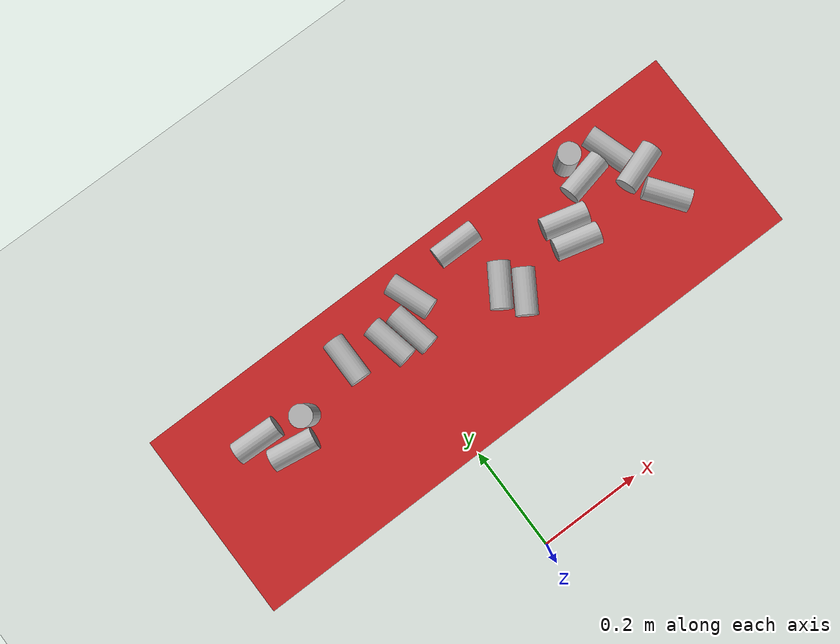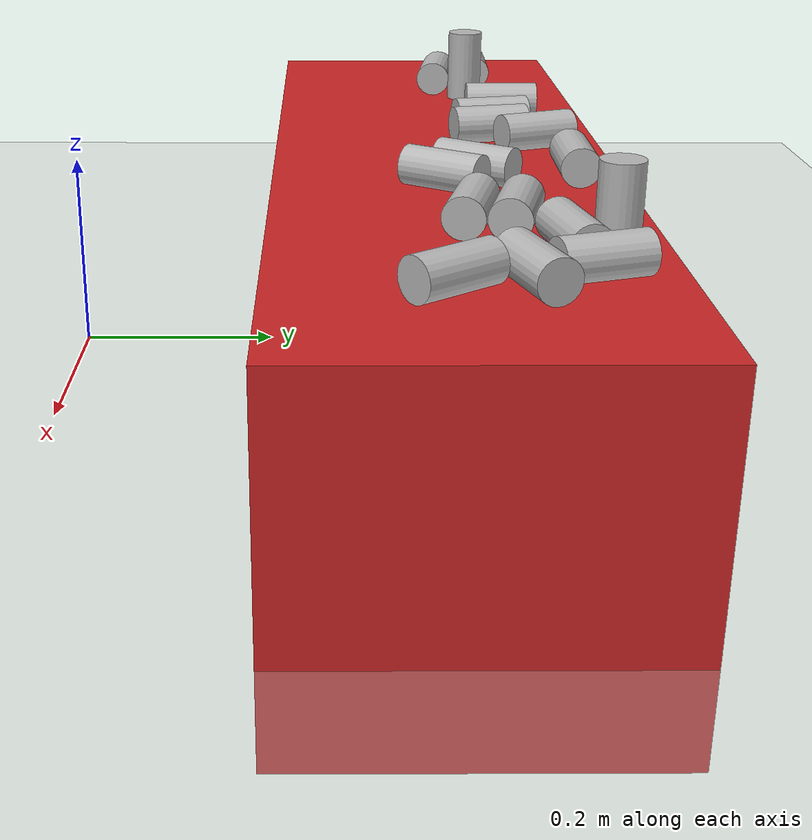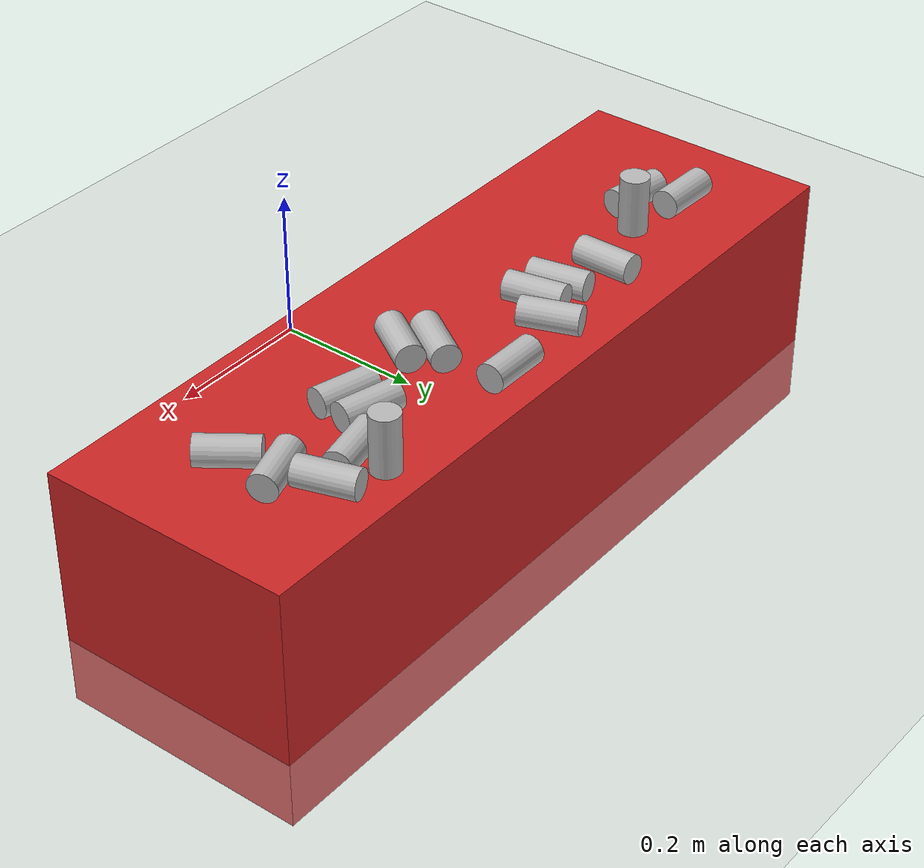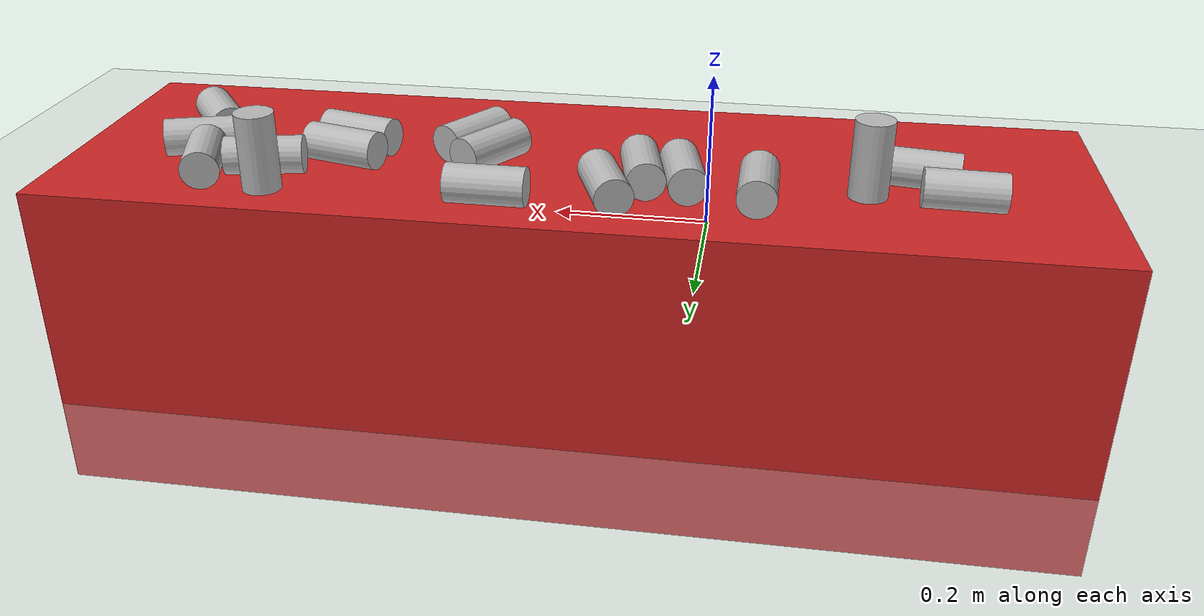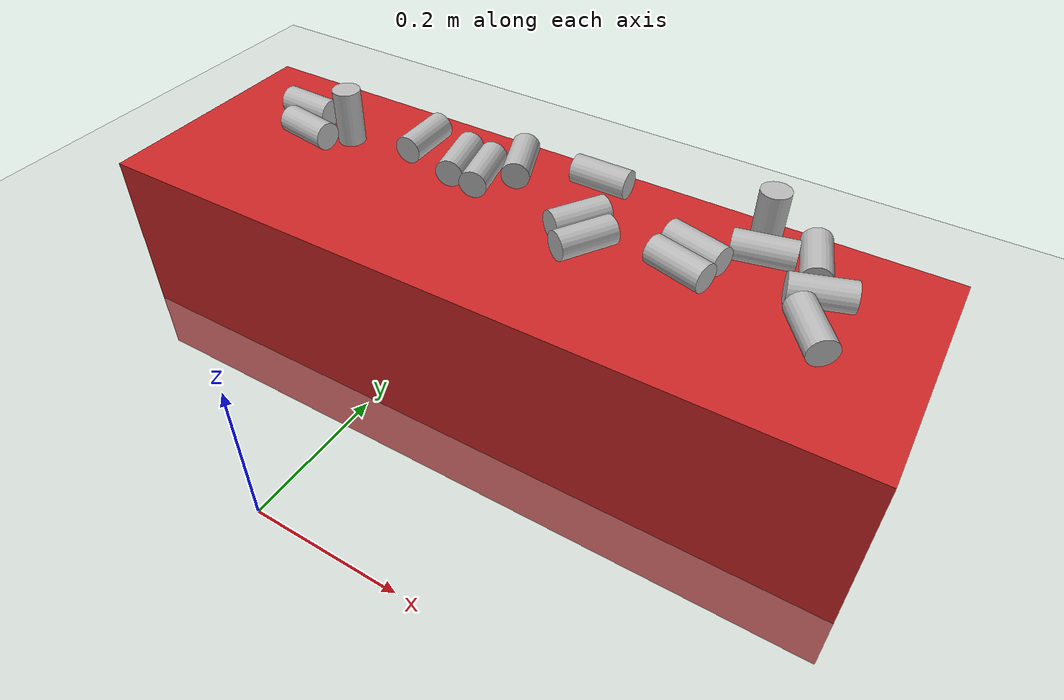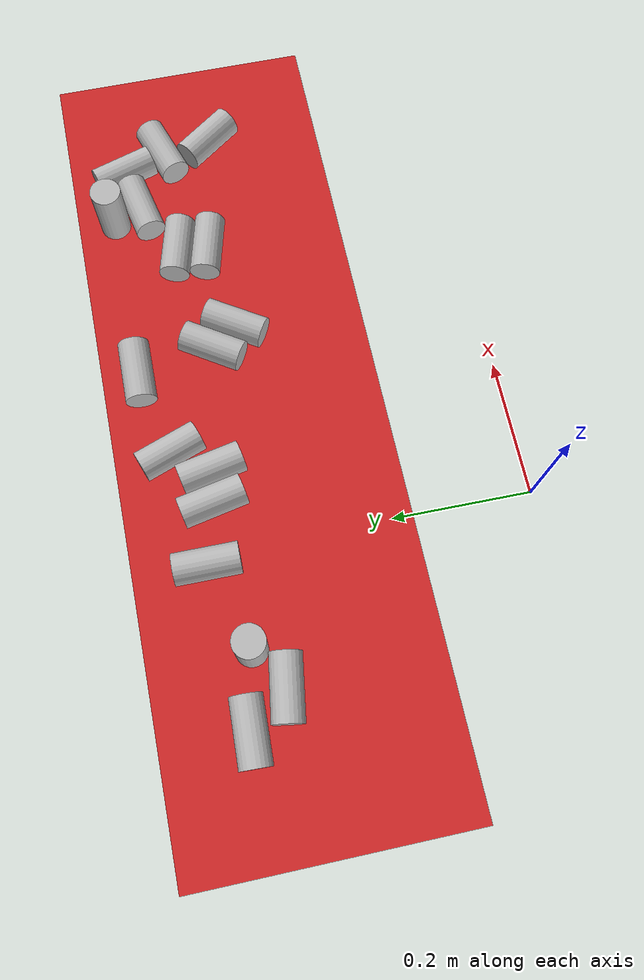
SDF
<sdf version="1.7">
 <world name="default">
  <model name="ground_plane">
   <static>1</static>
   <link name="link">
    <collision name="collision">
     <geometry><plane><normal>0 0 1</normal><size>100 100</size></plane></geometry>
     <surface>
      <contact><collide_bitmask>65535</collide_bitmask></contact>
      <friction><ode><mu>100</mu><mu2>50</mu2></ode></friction>
     </surface>
    </collision>
    <visual name="visual">
     <cast_shadows>0</cast_shadows>
     <geometry><plane><normal>0 0 1</normal><size>100 100</size></plane></geometry>
     <material>
      <script><uri>file://media/materials/scripts/gazebo.material</uri><name>Gazebo/Grey</name></script>
     </material>
    </visual>
   </link>
  </model>
  <model name="robot_station_clone">
   <static>1</static>
   <link name="link">
    <inertial>
     <mass>100</mass>
     <inertia>
      <ixx>0.166667</ixx>
      <ixy>0</ixy>
      <ixz>0</ixz>
      <iyy>0.166667</iyy>
      <iyz>0</iyz>
      <izz>0.166667</izz>
     </inertia>
    </inertial>
    <visual name="visual">
     <geometry><box><size>1.00072 0.323595 0.318232</size></box></geometry>
     <material>
      <script><name>Gazebo/Red</name><uri>file://media/materials/scripts/gazebo.material</uri></script>
      <shader type="pixel"/>
     </material>
    </visual>
    <collision name="collision">
     <geometry><box><size>1.00072 0.323595 0.318232</size></box></geometry>
     <surface>
      <friction>
       <ode><mu>1</mu><mu2>1</mu2><fdir1>0 0 0</fdir1><slip1>0</slip1><slip2>0</slip2></ode>
       <torsional>
        <coefficient>1</coefficient>
        <patch_radius>0</patch_radius>
        <surface_radius>0</surface_radius>
        <use_patch_radius>1</use_patch_radius>
        <ode><slip>0</slip></ode>
       </torsional>
      </friction>
      <bounce><restitution_coefficient>0</restitution_coefficient><threshold>1e+06</threshold></bounce>
      <contact>
       <collide_without_contact>0</collide_without_contact>
       <collide_without_contact_bitmask>1</collide_without_contact_bitmask>
       <collide_bitmask>1</collide_bitmask>
       <ode>
        <soft_cfm>0</soft_cfm>
        <soft_erp>0.2</soft_erp>
        <kp>1e+13</kp>
        <kd>1</kd>
        <max_vel>0.01</max_vel>
        <min_depth>0</min_depth>
       </ode>
       <bullet>
        <split_impulse>1</split_impulse>
        <split_impulse_penetration_threshold>-0.01</split_impulse_penetration_threshold>
        <soft_cfm>0</soft_cfm>
        <soft_erp>0.2</soft_erp>
        <kp>1e+13</kp>
        <kd>1</kd>
       </bullet>
      </contact>
     </surface>
    </collision>
   </link>
   <pose>0.108828 0.374252 0.07048 -1e-06 0.000369 0.008285</pose>
  </model>
  <model name="obj_s_4">
   <link name="link_0">
    <inertial>
     <mass>0.00147636</mass>
     <inertia>
      <ixx>4.89601e-06</ixx>
      <ixy>0</ixy>
      <ixz>0</ixz>
      <iyy>4.89601e-06</iyy>
      <iyz>0</iyz>
      <izz>1.48331e-06</izz>
     </inertia>
    </inertial>
    <visual name="visual">
     <geometry><cylinder><radius>0.018402</radius><length>0.074444</length></cylinder></geometry>
     <material>
      <lighting>1</lighting>
      <script>
       <uri>model://sprite/materials/scripts</uri>
       <uri>model://sprite/materials/textures</uri>
       <name>sprite</name>
      </script>
      <shader type="pixel"/>
     </material>
    </visual>
    <collision name="collision">
     <geometry><cylinder><radius>0.018402</radius><length>0.074444</length></cylinder></geometry>
     <surface>
      <friction>
       <ode><mu>1</mu><mu2>1</mu2><fdir1>0 0 0</fdir1><slip1>0</slip1><slip2>0</slip2></ode>
       <torsional>
        <coefficient>1</coefficient>
        <patch_radius>0</patch_radius>
        <surface_radius>0</surface_radius>
        <use_patch_radius>1</use_patch_radius>
        <ode><slip>0</slip></ode>
       </torsional>
      </friction>
      <bounce><restitution_coefficient>0</restitution_coefficient><threshold>1e+06</threshold></bounce>
      <contact>
       <collide_without_contact>0</collide_without_contact>
       <collide_without_contact_bitmask>1</collide_without_contact_bitmask>
       <collide_bitmask>1</collide_bitmask>
       <ode>
        <soft_cfm>0</soft_cfm>
        <soft_erp>0.2</soft_erp>
        <kp>1e+13</kp>
        <kd>1</kd>
        <max_vel>0.01</max_vel>
        <min_depth>0</min_depth>
       </ode>
       <bullet>
        <split_impulse>1</split_impulse>
        <split_impulse_penetration_threshold>-0.01</split_impulse_penetration_threshold>
        <soft_cfm>0</soft_cfm>
        <soft_erp>0.2</soft_erp>
        <kp>1e+13</kp>
        <kd>1</kd>
       </bullet>
      </contact>
     </surface>
    </collision>
   </link>
   <static>0</static>
   <pose>-0.069769 0.448923 0.249056 -1.5708 -0.578227 0.000529</pose>
  </model>
  <model name="obj_s_0">
   <link name="link_0">
    <inertial>
     <mass>0.00147636</mass>
     <inertia>
      <ixx>4.89601e-06</ixx>
      <ixy>0</ixy>
      <ixz>0</ixz>
      <iyy>4.89601e-06</iyy>
      <iyz>0</iyz>
      <izz>1.48331e-06</izz>
     </inertia>
    </inertial>
    <visual name="visual">
     <geometry><cylinder><radius>0.018402</radius><length>0.074444</length></cylinder></geometry>
     <material>
      <lighting>1</lighting>
      <script>
       <uri>model://sprite/materials/scripts</uri>
       <uri>model://sprite/materials/textures</uri>
       <name>sprite</name>
      </script>
      <shader type="pixel"/>
     </material>
    </visual>
    <collision name="collision">
     <geometry><cylinder><radius>0.018402</radius><length>0.074444</length></cylinder></geometry>
     <surface>
      <friction>
       <ode><mu>1</mu><mu2>1</mu2><fdir1>0 0 0</fdir1><slip1>0</slip1><slip2>0</slip2></ode>
       <torsional>
        <coefficient>1</coefficient>
        <patch_radius>0</patch_radius>
        <surface_radius>0</surface_radius>
        <use_patch_radius>1</use_patch_radius>
        <ode><slip>0</slip></ode>
       </torsional>
      </friction>
      <bounce><restitution_coefficient>0</restitution_coefficient><threshold>1e+06</threshold></bounce>
      <contact>
       <collide_without_contact>0</collide_without_contact>
       <collide_without_contact_bitmask>1</collide_without_contact_bitmask>
       <collide_bitmask>1</collide_bitmask>
       <ode>
        <soft_cfm>0</soft_cfm>
        <soft_erp>0.2</soft_erp>
        <kp>1e+13</kp>
        <kd>1</kd>
        <max_vel>0.01</max_vel>
        <min_depth>0</min_depth>
       </ode>
       <bullet>
        <split_impulse>1</split_impulse>
        <split_impulse_penetration_threshold>-0.01</split_impulse_penetration_threshold>
        <soft_cfm>0</soft_cfm>
        <soft_erp>0.2</soft_erp>
        <kp>1e+13</kp>
        <kd>1</kd>
       </bullet>
      </contact>
     </surface>
    </collision>
   </link>
   <static>0</static>
   <pose>-0.169124 0.41751 0.267872 0.000107 -0.000268 0.156933</pose>
  </model>
  <model name="obj_s_6">
   <link name="link_0">
    <inertial>
     <mass>0.00147636</mass>
     <inertia>
      <ixx>4.89601e-06</ixx>
      <ixy>0</ixy>
      <ixz>0</ixz>
      <iyy>4.89601e-06</iyy>
      <iyz>0</iyz>
      <izz>1.48331e-06</izz>
     </inertia>
    </inertial>
    <visual name="visual">
     <geometry><cylinder><radius>0.018402</radius><length>0.074444</length></cylinder></geometry>
     <material>
      <lighting>1</lighting>
      <script>
       <uri>model://sprite/materials/scripts</uri>
       <uri>model://sprite/materials/textures</uri>
       <name>sprite</name>
      </script>
      <shader type="pixel"/>
     </material>
    </visual>
    <collision name="collision">
     <geometry><cylinder><radius>0.018402</radius><length>0.074444</length></cylinder></geometry>
     <surface>
      <friction>
       <ode><mu>1</mu><mu2>1</mu2><fdir1>0 0 0</fdir1><slip1>0</slip1><slip2>0</slip2></ode>
       <torsional>
        <coefficient>1</coefficient>
        <patch_radius>0</patch_radius>
        <surface_radius>0</surface_radius>
        <use_patch_radius>1</use_patch_radius>
        <ode><slip>0</slip></ode>
       </torsional>
      </friction>
      <bounce><restitution_coefficient>0</restitution_coefficient><threshold>1e+06</threshold></bounce>
      <contact>
       <collide_without_contact>0</collide_without_contact>
       <collide_without_contact_bitmask>1</collide_without_contact_bitmask>
       <collide_bitmask>1</collide_bitmask>
       <ode>
        <soft_cfm>0</soft_cfm>
        <soft_erp>0.2</soft_erp>
        <kp>1e+13</kp>
        <kd>1</kd>
        <max_vel>0.01</max_vel>
        <min_depth>0</min_depth>
       </ode>
       <bullet>
        <split_impulse>1</split_impulse>
        <split_impulse_penetration_threshold>-0.01</split_impulse_penetration_threshold>
        <soft_cfm>0</soft_cfm>
        <soft_erp>0.2</soft_erp>
        <kp>1e+13</kp>
        <kd>1</kd>
       </bullet>
      </contact>
     </surface>
    </collision>
   </link>
   <static>0</static>
   <pose>-0.216381 0.388058 0.249056 -1.5708 1.12455 -1.71783</pose>
  </model>
  <model name="obj_s_10">
   <link name="link_0">
    <inertial>
     <mass>0.00147636</mass>
     <inertia>
      <ixx>4.89601e-06</ixx>
      <ixy>0</ixy>
      <ixz>0</ixz>
      <iyy>4.89601e-06</iyy>
      <iyz>0</iyz>
      <izz>1.48331e-06</izz>
     </inertia>
    </inertial>
    <visual name="visual">
     <geometry><cylinder><radius>0.018402</radius><length>0.074444</length></cylinder></geometry>
     <material>
      <lighting>1</lighting>
      <script>
       <uri>model://sprite/materials/scripts</uri>
       <uri>model://sprite/materials/textures</uri>
       <name>sprite</name>
      </script>
      <shader type="pixel"/>
     </material>
    </visual>
    <collision name="collision">
     <geometry><cylinder><radius>0.018402</radius><length>0.074444</length></cylinder></geometry>
     <surface>
      <friction>
       <ode><mu>1</mu><mu2>1</mu2><fdir1>0 0 0</fdir1><slip1>0</slip1><slip2>0</slip2></ode>
       <torsional>
        <coefficient>1</coefficient>
        <patch_radius>0</patch_radius>
        <surface_radius>0</surface_radius>
        <use_patch_radius>1</use_patch_radius>
        <ode><slip>0</slip></ode>
       </torsional>
      </friction>
      <bounce><restitution_coefficient>0</restitution_coefficient><threshold>1e+06</threshold></bounce>
      <contact>
       <collide_without_contact>0</collide_without_contact>
       <collide_without_contact_bitmask>1</collide_without_contact_bitmask>
       <collide_bitmask>1</collide_bitmask>
       <ode>
        <soft_cfm>0</soft_cfm>
        <soft_erp>0.2</soft_erp>
        <kp>1e+13</kp>
        <kd>1</kd>
        <max_vel>0.01</max_vel>
        <min_depth>0</min_depth>
       </ode>
       <bullet>
        <split_impulse>1</split_impulse>
        <split_impulse_penetration_threshold>-0.01</split_impulse_penetration_threshold>
        <soft_cfm>0</soft_cfm>
        <soft_erp>0.2</soft_erp>
        <kp>1e+13</kp>
        <kd>1</kd>
       </bullet>
      </contact>
     </surface>
    </collision>
   </link>
   <static>0</static>
   <pose>-0.252392 0.433081 0.249047 1.57096 1.38475 -1.59848</pose>
  </model>
  <model name="obj_p_2">
   <link name="link_0">
    <inertial>
     <mass>0.00147636</mass>
     <inertia>
      <ixx>4.89601e-06</ixx>
      <ixy>0</ixy>
      <ixz>0</ixz>
      <iyy>4.89601e-06</iyy>
      <iyz>0</iyz>
      <izz>1.48331e-06</izz>
     </inertia>
    </inertial>
    <visual name="visual">
     <geometry><cylinder><radius>0.018402</radius><length>0.074444</length></cylinder></geometry>
     <material>
      <lighting>1</lighting>
      <script>
       <uri>model://pepsi/materials/scripts</uri>
       <uri>model://pepsi/materials/textures</uri>
       <name>pepsi</name>
      </script>
      <shader type="pixel"/>
     </material>
    </visual>
    <collision name="collision">
     <geometry><cylinder><radius>0.018402</radius><length>0.074444</length></cylinder></geometry>
     <surface>
      <friction>
       <ode><mu>1</mu><mu2>1</mu2><fdir1>0 0 0</fdir1><slip1>0</slip1><slip2>0</slip2></ode>
       <torsional>
        <coefficient>1</coefficient>
        <patch_radius>0</patch_radius>
        <surface_radius>0</surface_radius>
        <use_patch_radius>1</use_patch_radius>
        <ode><slip>0</slip></ode>
       </torsional>
      </friction>
      <bounce><restitution_coefficient>0</restitution_coefficient><threshold>1e+06</threshold></bounce>
      <contact>
       <collide_without_contact>0</collide_without_contact>
       <collide_without_contact_bitmask>1</collide_without_contact_bitmask>
       <collide_bitmask>1</collide_bitmask>
       <ode>
        <soft_cfm>0</soft_cfm>
        <soft_erp>0.2</soft_erp>
        <kp>1e+13</kp>
        <kd>1</kd>
        <max_vel>0.01</max_vel>
        <min_depth>0</min_depth>
       </ode>
       <bullet>
        <split_impulse>1</split_impulse>
        <split_impulse_penetration_threshold>-0.01</split_impulse_penetration_threshold>
        <soft_cfm>0</soft_cfm>
        <soft_erp>0.2</soft_erp>
        <kp>1e+13</kp>
        <kd>1</kd>
       </bullet>
      </contact>
     </surface>
    </collision>
   </link>
   <static>0</static>
   <pose>0.067313 0.468956 0.249047 -1.57076 0.564782 0.358282</pose>
  </model>
  <model name="obj_p_3">
   <link name="link_0">
    <inertial>
     <mass>0.00147636</mass>
     <inertia>
      <ixx>4.89601e-06</ixx>
      <ixy>0</ixy>
      <ixz>0</ixz>
      <iyy>4.89601e-06</iyy>
      <iyz>0</iyz>
      <izz>1.48331e-06</izz>
     </inertia>
    </inertial>
    <visual name="visual">
     <geometry><cylinder><radius>0.018402</radius><length>0.074444</length></cylinder></geometry>
     <material>
      <lighting>1</lighting>
      <script>
       <uri>model://pepsi/materials/scripts</uri>
       <uri>model://pepsi/materials/textures</uri>
       <name>pepsi</name>
      </script>
      <shader type="pixel"/>
     </material>
    </visual>
    <collision name="collision">
     <geometry><cylinder><radius>0.018402</radius><length>0.074444</length></cylinder></geometry>
     <surface>
      <friction>
       <ode><mu>1</mu><mu2>1</mu2><fdir1>0 0 0</fdir1><slip1>0</slip1><slip2>0</slip2></ode>
       <torsional>
        <coefficient>1</coefficient>
        <patch_radius>0</patch_radius>
        <surface_radius>0</surface_radius>
        <use_patch_radius>1</use_patch_radius>
        <ode><slip>0</slip></ode>
       </torsional>
      </friction>
      <bounce><restitution_coefficient>0</restitution_coefficient><threshold>1e+06</threshold></bounce>
      <contact>
       <collide_without_contact>0</collide_without_contact>
       <collide_without_contact_bitmask>1</collide_without_contact_bitmask>
       <collide_bitmask>1</collide_bitmask>
       <ode>
        <soft_cfm>0</soft_cfm>
        <soft_erp>0.2</soft_erp>
        <kp>1e+13</kp>
        <kd>1</kd>
        <max_vel>0.01</max_vel>
        <min_depth>0</min_depth>
       </ode>
       <bullet>
        <split_impulse>1</split_impulse>
        <split_impulse_penetration_threshold>-0.01</split_impulse_penetration_threshold>
        <soft_cfm>0</soft_cfm>
        <soft_erp>0.2</soft_erp>
        <kp>1e+13</kp>
        <kd>1</kd>
       </bullet>
      </contact>
     </surface>
    </collision>
   </link>
   <static>0</static>
   <pose>-0.000402 0.431188 0.249047 -1.57077 -0.694504 0.20793</pose>
  </model>
  <model name="obj_p_6">
   <link name="link_0">
    <inertial>
     <mass>0.00147636</mass>
     <inertia>
      <ixx>4.89601e-06</ixx>
      <ixy>0</ixy>
      <ixz>0</ixz>
      <iyy>4.89601e-06</iyy>
      <iyz>0</iyz>
      <izz>1.48331e-06</izz>
     </inertia>
    </inertial>
    <visual name="visual">
     <geometry><cylinder><radius>0.018402</radius><length>0.074444</length></cylinder></geometry>
     <material>
      <lighting>1</lighting>
      <script>
       <uri>model://pepsi/materials/scripts</uri>
       <uri>model://pepsi/materials/textures</uri>
       <name>pepsi</name>
      </script>
      <shader type="pixel"/>
     </material>
    </visual>
    <collision name="collision">
     <geometry><cylinder><radius>0.018402</radius><length>0.074444</length></cylinder></geometry>
     <surface>
      <friction>
       <ode><mu>1</mu><mu2>1</mu2><fdir1>0 0 0</fdir1><slip1>0</slip1><slip2>0</slip2></ode>
       <torsional>
        <coefficient>1</coefficient>
        <patch_radius>0</patch_radius>
        <surface_radius>0</surface_radius>
        <use_patch_radius>1</use_patch_radius>
        <ode><slip>0</slip></ode>
       </torsional>
      </friction>
      <bounce><restitution_coefficient>0</restitution_coefficient><threshold>1e+06</threshold></bounce>
      <contact>
       <collide_without_contact>0</collide_without_contact>
       <collide_without_contact_bitmask>1</collide_without_contact_bitmask>
       <collide_bitmask>1</collide_bitmask>
       <ode>
        <soft_cfm>0</soft_cfm>
        <soft_erp>0.2</soft_erp>
        <kp>1e+13</kp>
        <kd>1</kd>
        <max_vel>0.01</max_vel>
        <min_depth>0</min_depth>
       </ode>
       <bullet>
        <split_impulse>1</split_impulse>
        <split_impulse_penetration_threshold>-0.01</split_impulse_penetration_threshold>
        <soft_cfm>0</soft_cfm>
        <soft_erp>0.2</soft_erp>
        <kp>1e+13</kp>
        <kd>1</kd>
       </bullet>
      </contact>
     </surface>
    </collision>
   </link>
   <static>0</static>
   <pose>0.172377 0.491838 0.249056 1.5708 1.20451 -1.57081</pose>
  </model>
  <model name="obj_p_7">
   <link name="link_0">
    <inertial>
     <mass>0.00147636</mass>
     <inertia>
      <ixx>4.89601e-06</ixx>
      <ixy>0</ixy>
      <ixz>0</ixz>
      <iyy>4.89601e-06</iyy>
      <iyz>0</iyz>
      <izz>1.48331e-06</izz>
     </inertia>
    </inertial>
    <visual name="visual">
     <geometry><cylinder><radius>0.018402</radius><length>0.074444</length></cylinder></geometry>
     <material>
      <lighting>1</lighting>
      <script>
       <uri>model://pepsi/materials/scripts</uri>
       <uri>model://pepsi/materials/textures</uri>
       <name>pepsi</name>
      </script>
      <shader type="pixel"/>
     </material>
    </visual>
    <collision name="collision">
     <geometry><cylinder><radius>0.018402</radius><length>0.074444</length></cylinder></geometry>
     <surface>
      <friction>
       <ode><mu>1</mu><mu2>1</mu2><fdir1>0 0 0</fdir1><slip1>0</slip1><slip2>0</slip2></ode>
       <torsional>
        <coefficient>1</coefficient>
        <patch_radius>0</patch_radius>
        <surface_radius>0</surface_radius>
        <use_patch_radius>1</use_patch_radius>
        <ode><slip>0</slip></ode>
       </torsional>
      </friction>
      <bounce><restitution_coefficient>0</restitution_coefficient><threshold>1e+06</threshold></bounce>
      <contact>
       <collide_without_contact>0</collide_without_contact>
       <collide_without_contact_bitmask>1</collide_without_contact_bitmask>
       <collide_bitmask>1</collide_bitmask>
       <ode>
        <soft_cfm>0</soft_cfm>
        <soft_erp>0.2</soft_erp>
        <kp>1e+13</kp>
        <kd>1</kd>
        <max_vel>0.01</max_vel>
        <min_depth>0</min_depth>
       </ode>
       <bullet>
        <split_impulse>1</split_impulse>
        <split_impulse_penetration_threshold>-0.01</split_impulse_penetration_threshold>
        <soft_cfm>0</soft_cfm>
        <soft_erp>0.2</soft_erp>
        <kp>1e+13</kp>
        <kd>1</kd>
       </bullet>
      </contact>
     </surface>
    </collision>
   </link>
   <static>0</static>
   <pose>0.038264 0.426272 0.249056 1.5708 0.69256 -2.93364</pose>
  </model>
  <model name="obj_p_9">
   <link name="link_0">
    <inertial>
     <mass>0.00147636</mass>
     <inertia>
      <ixx>4.89601e-06</ixx>
      <ixy>0</ixy>
      <ixz>0</ixz>
      <iyy>4.89601e-06</iyy>
      <iyz>0</iyz>
      <izz>1.48331e-06</izz>
     </inertia>
    </inertial>
    <visual name="visual">
     <geometry><cylinder><radius>0.018402</radius><length>0.074444</length></cylinder></geometry>
     <material>
      <lighting>1</lighting>
      <script>
       <uri>model://pepsi/materials/scripts</uri>
       <uri>model://pepsi/materials/textures</uri>
       <name>pepsi</name>
      </script>
      <shader type="pixel"/>
     </material>
    </visual>
    <collision name="collision">
     <geometry><cylinder><radius>0.018402</radius><length>0.074444</length></cylinder></geometry>
     <surface>
      <friction>
       <ode><mu>1</mu><mu2>1</mu2><fdir1>0 0 0</fdir1><slip1>0</slip1><slip2>0</slip2></ode>
       <torsional>
        <coefficient>1</coefficient>
        <patch_radius>0</patch_radius>
        <surface_radius>0</surface_radius>
        <use_patch_radius>1</use_patch_radius>
        <ode><slip>0</slip></ode>
       </torsional>
      </friction>
      <bounce><restitution_coefficient>0</restitution_coefficient><threshold>1e+06</threshold></bounce>
      <contact>
       <collide_without_contact>0</collide_without_contact>
       <collide_without_contact_bitmask>1</collide_without_contact_bitmask>
       <collide_bitmask>1</collide_bitmask>
       <ode>
        <soft_cfm>0</soft_cfm>
        <soft_erp>0.2</soft_erp>
        <kp>1e+13</kp>
        <kd>1</kd>
        <max_vel>0.01</max_vel>
        <min_depth>0</min_depth>
       </ode>
       <bullet>
        <split_impulse>1</split_impulse>
        <split_impulse_penetration_threshold>-0.01</split_impulse_penetration_threshold>
        <soft_cfm>0</soft_cfm>
        <soft_erp>0.2</soft_erp>
        <kp>1e+13</kp>
        <kd>1</kd>
       </bullet>
      </contact>
     </surface>
    </collision>
   </link>
   <static>0</static>
   <pose>0.189051 0.3994 0.249056 1.5708 0.489849 2.57393</pose>
  </model>
  <model name="obj_p_10">
   <link name="link_0">
    <inertial>
     <mass>0.00147636</mass>
     <inertia>
      <ixx>4.89601e-06</ixx>
      <ixy>0</ixy>
      <ixz>0</ixz>
      <iyy>4.89601e-06</iyy>
      <iyz>0</iyz>
      <izz>1.48331e-06</izz>
     </inertia>
    </inertial>
    <visual name="visual">
     <geometry><cylinder><radius>0.018402</radius><length>0.074444</length></cylinder></geometry>
     <material>
      <lighting>1</lighting>
      <script>
       <uri>model://pepsi/materials/scripts</uri>
       <uri>model://pepsi/materials/textures</uri>
       <name>pepsi</name>
      </script>
      <shader type="pixel"/>
     </material>
    </visual>
    <collision name="collision">
     <geometry><cylinder><radius>0.018402</radius><length>0.074444</length></cylinder></geometry>
     <surface>
      <friction>
       <ode><mu>1</mu><mu2>1</mu2><fdir1>0 0 0</fdir1><slip1>0</slip1><slip2>0</slip2></ode>
       <torsional>
        <coefficient>1</coefficient>
        <patch_radius>0</patch_radius>
        <surface_radius>0</surface_radius>
        <use_patch_radius>1</use_patch_radius>
        <ode><slip>0</slip></ode>
       </torsional>
      </friction>
      <bounce><restitution_coefficient>0</restitution_coefficient><threshold>1e+06</threshold></bounce>
      <contact>
       <collide_without_contact>0</collide_without_contact>
       <collide_without_contact_bitmask>1</collide_without_contact_bitmask>
       <collide_bitmask>1</collide_bitmask>
       <ode>
        <soft_cfm>0</soft_cfm>
        <soft_erp>0.2</soft_erp>
        <kp>1e+13</kp>
        <kd>1</kd>
        <max_vel>0.01</max_vel>
        <min_depth>0</min_depth>
       </ode>
       <bullet>
        <split_impulse>1</split_impulse>
        <split_impulse_penetration_threshold>-0.01</split_impulse_penetration_threshold>
        <soft_cfm>0</soft_cfm>
        <soft_erp>0.2</soft_erp>
        <kp>1e+13</kp>
        <kd>1</kd>
       </bullet>
      </contact>
     </surface>
    </collision>
   </link>
   <static>0</static>
   <pose>0.213846 0.368465 0.249048 1.57084 -0.098085 2.58223</pose>
  </model>
  <model name="obj_c_0">
   <link name="link_0">
    <inertial>
     <mass>0.00147636</mass>
     <inertia>
      <ixx>4.89601e-06</ixx>
      <ixy>0</ixy>
      <ixz>0</ixz>
      <iyy>4.89601e-06</iyy>
      <iyz>0</iyz>
      <izz>1.48331e-06</izz>
     </inertia>
    </inertial>
    <visual name="visual">
     <geometry><cylinder><radius>0.018402</radius><length>0.074444</length></cylinder></geometry>
     <material>
      <lighting>1</lighting>
      <script>
       <uri>model://coke/materials/scripts</uri>
       <uri>model://coke/materials/textures</uri>
       <name>coke</name>
      </script>
      <shader type="pixel"/>
     </material>
    </visual>
    <collision name="collision">
     <geometry><cylinder><radius>0.018402</radius><length>0.074444</length></cylinder></geometry>
     <surface>
      <friction>
       <ode><mu>1</mu><mu2>1</mu2><fdir1>0 0 0</fdir1><slip1>0</slip1><slip2>0</slip2></ode>
       <torsional>
        <coefficient>1</coefficient>
        <patch_radius>0</patch_radius>
        <surface_radius>0</surface_radius>
        <use_patch_radius>1</use_patch_radius>
        <ode><slip>0</slip></ode>
       </torsional>
      </friction>
      <bounce><restitution_coefficient>0</restitution_coefficient><threshold>1e+06</threshold></bounce>
      <contact>
       <collide_without_contact>0</collide_without_contact>
       <collide_without_contact_bitmask>1</collide_without_contact_bitmask>
       <collide_bitmask>1</collide_bitmask>
       <ode>
        <soft_cfm>0</soft_cfm>
        <soft_erp>0.2</soft_erp>
        <kp>1e+13</kp>
        <kd>1</kd>
        <max_vel>0.01</max_vel>
        <min_depth>0</min_depth>
       </ode>
       <bullet>
        <split_impulse>1</split_impulse>
        <split_impulse_penetration_threshold>-0.01</split_impulse_penetration_threshold>
        <soft_cfm>0</soft_cfm>
        <soft_erp>0.2</soft_erp>
        <kp>1e+13</kp>
        <kd>1</kd>
       </bullet>
      </contact>
     </surface>
    </collision>
   </link>
   <static>0</static>
   <pose>0.396408 0.456246 0.249055 1.57085 -1.05776 -1.35085</pose>
  </model>
  <model name="obj_c_1">
   <link name="link_0">
    <inertial>
     <mass>0.00147636</mass>
     <inertia>
      <ixx>4.89601e-06</ixx>
      <ixy>0</ixy>
      <ixz>0</ixz>
      <iyy>4.89601e-06</iyy>
      <iyz>0</iyz>
      <izz>1.48331e-06</izz>
     </inertia>
    </inertial>
    <visual name="visual">
     <geometry><cylinder><radius>0.018402</radius><length>0.074444</length></cylinder></geometry>
     <material>
      <lighting>1</lighting>
      <script>
       <uri>model://coke/materials/scripts</uri>
       <uri>model://coke/materials/textures</uri>
       <name>coke</name>
      </script>
      <shader type="pixel"/>
     </material>
    </visual>
    <collision name="collision">
     <geometry><cylinder><radius>0.018402</radius><length>0.074444</length></cylinder></geometry>
     <surface>
      <friction>
       <ode><mu>1</mu><mu2>1</mu2><fdir1>0 0 0</fdir1><slip1>0</slip1><slip2>0</slip2></ode>
       <torsional>
        <coefficient>1</coefficient>
        <patch_radius>0</patch_radius>
        <surface_radius>0</surface_radius>
        <use_patch_radius>1</use_patch_radius>
        <ode><slip>0</slip></ode>
       </torsional>
      </friction>
      <bounce><restitution_coefficient>0</restitution_coefficient><threshold>1e+06</threshold></bounce>
      <contact>
       <collide_without_contact>0</collide_without_contact>
       <collide_without_contact_bitmask>1</collide_without_contact_bitmask>
       <collide_bitmask>1</collide_bitmask>
       <ode>
        <soft_cfm>0</soft_cfm>
        <soft_erp>0.2</soft_erp>
        <kp>1e+13</kp>
        <kd>1</kd>
        <max_vel>0.01</max_vel>
        <min_depth>0</min_depth>
       </ode>
       <bullet>
        <split_impulse>1</split_impulse>
        <split_impulse_penetration_threshold>-0.01</split_impulse_penetration_threshold>
        <soft_cfm>0</soft_cfm>
        <soft_erp>0.2</soft_erp>
        <kp>1e+13</kp>
        <kd>1</kd>
       </bullet>
      </contact>
     </surface>
    </collision>
   </link>
   <static>0</static>
   <pose>0.325479 0.383063 0.249054 1.57085 0.34289 -1.82156</pose>
  </model>
  <model name="obj_c_4">
   <link name="link_0">
    <inertial>
     <mass>0.00147636</mass>
     <inertia>
      <ixx>4.89601e-06</ixx>
      <ixy>0</ixy>
      <ixz>0</ixz>
      <iyy>4.89601e-06</iyy>
      <iyz>0</iyz>
      <izz>1.48331e-06</izz>
     </inertia>
    </inertial>
    <visual name="visual">
     <geometry><cylinder><radius>0.018402</radius><length>0.074444</length></cylinder></geometry>
     <material>
      <lighting>1</lighting>
      <script>
       <uri>model://coke/materials/scripts</uri>
       <uri>model://coke/materials/textures</uri>
       <name>coke</name>
      </script>
      <shader type="pixel"/>
     </material>
    </visual>
    <collision name="collision">
     <geometry><cylinder><radius>0.018402</radius><length>0.074444</length></cylinder></geometry>
     <surface>
      <friction>
       <ode><mu>1</mu><mu2>1</mu2><fdir1>0 0 0</fdir1><slip1>0</slip1><slip2>0</slip2></ode>
       <torsional>
        <coefficient>1</coefficient>
        <patch_radius>0</patch_radius>
        <surface_radius>0</surface_radius>
        <use_patch_radius>1</use_patch_radius>
        <ode><slip>0</slip></ode>
       </torsional>
      </friction>
      <bounce><restitution_coefficient>0</restitution_coefficient><threshold>1e+06</threshold></bounce>
      <contact>
       <collide_without_contact>0</collide_without_contact>
       <collide_without_contact_bitmask>1</collide_without_contact_bitmask>
       <collide_bitmask>1</collide_bitmask>
       <ode>
        <soft_cfm>0</soft_cfm>
        <soft_erp>0.2</soft_erp>
        <kp>1e+13</kp>
        <kd>1</kd>
        <max_vel>0.01</max_vel>
        <min_depth>0</min_depth>
       </ode>
       <bullet>
        <split_impulse>1</split_impulse>
        <split_impulse_penetration_threshold>-0.01</split_impulse_penetration_threshold>
        <soft_cfm>0</soft_cfm>
        <soft_erp>0.2</soft_erp>
        <kp>1e+13</kp>
        <kd>1</kd>
       </bullet>
      </contact>
     </surface>
    </collision>
   </link>
   <static>0</static>
   <pose>0.474057 0.417358 0.249056 -1.57077 1.23124 -1.24145</pose>
  </model>
  <model name="obj_c_6">
   <link name="link_0">
    <inertial>
     <mass>0.00147636</mass>
     <inertia>
      <ixx>4.89601e-06</ixx>
      <ixy>0</ixy>
      <ixz>0</ixz>
      <iyy>4.89601e-06</iyy>
      <iyz>0</iyz>
      <izz>1.48331e-06</izz>
     </inertia>
    </inertial>
    <visual name="visual">
     <geometry><cylinder><radius>0.018402</radius><length>0.074444</length></cylinder></geometry>
     <material>
      <lighting>1</lighting>
      <script>
       <uri>model://coke/materials/scripts</uri>
       <uri>model://coke/materials/textures</uri>
       <name>coke</name>
      </script>
      <shader type="pixel"/>
     </material>
    </visual>
    <collision name="collision">
     <geometry><cylinder><radius>0.018402</radius><length>0.074444</length></cylinder></geometry>
     <surface>
      <friction>
       <ode><mu>1</mu><mu2>1</mu2><fdir1>0 0 0</fdir1><slip1>0</slip1><slip2>0</slip2></ode>
       <torsional>
        <coefficient>1</coefficient>
        <patch_radius>0</patch_radius>
        <surface_radius>0</surface_radius>
        <use_patch_radius>1</use_patch_radius>
        <ode><slip>0</slip></ode>
       </torsional>
      </friction>
      <bounce><restitution_coefficient>0</restitution_coefficient><threshold>1e+06</threshold></bounce>
      <contact>
       <collide_without_contact>0</collide_without_contact>
       <collide_without_contact_bitmask>1</collide_without_contact_bitmask>
       <collide_bitmask>1</collide_bitmask>
       <ode>
        <soft_cfm>0</soft_cfm>
        <soft_erp>0.2</soft_erp>
        <kp>1e+13</kp>
        <kd>1</kd>
        <max_vel>0.01</max_vel>
        <min_depth>0</min_depth>
       </ode>
       <bullet>
        <split_impulse>1</split_impulse>
        <split_impulse_penetration_threshold>-0.01</split_impulse_penetration_threshold>
        <soft_cfm>0</soft_cfm>
        <soft_erp>0.2</soft_erp>
        <kp>1e+13</kp>
        <kd>1</kd>
       </bullet>
      </contact>
     </surface>
    </collision>
   </link>
   <static>0</static>
   <pose>0.329743 0.419996 0.249007 -1.5708 -0.999586 1.31918</pose>
  </model>
  <model name="obj_c_7">
   <link name="link_0">
    <inertial>
     <mass>0.00147636</mass>
     <inertia>
      <ixx>4.89601e-06</ixx>
      <ixy>0</ixy>
      <ixz>0</ixz>
      <iyy>4.89601e-06</iyy>
      <iyz>0</iyz>
      <izz>1.48331e-06</izz>
     </inertia>
    </inertial>
    <visual name="visual">
     <geometry><cylinder><radius>0.018402</radius><length>0.074444</length></cylinder></geometry>
     <material>
      <lighting>1</lighting>
      <script>
       <uri>model://coke/materials/scripts</uri>
       <uri>model://coke/materials/textures</uri>
       <name>coke</name>
      </script>
      <shader type="pixel"/>
     </material>
    </visual>
    <collision name="collision">
     <geometry><cylinder><radius>0.018402</radius><length>0.074444</length></cylinder></geometry>
     <surface>
      <friction>
       <ode><mu>1</mu><mu2>1</mu2><fdir1>0 0 0</fdir1><slip1>0</slip1><slip2>0</slip2></ode>
       <torsional>
        <coefficient>1</coefficient>
        <patch_radius>0</patch_radius>
        <surface_radius>0</surface_radius>
        <use_patch_radius>1</use_patch_radius>
        <ode><slip>0</slip></ode>
       </torsional>
      </friction>
      <bounce><restitution_coefficient>0</restitution_coefficient><threshold>1e+06</threshold></bounce>
      <contact>
       <collide_without_contact>0</collide_without_contact>
       <collide_without_contact_bitmask>1</collide_without_contact_bitmask>
       <collide_bitmask>1</collide_bitmask>
       <ode>
        <soft_cfm>0</soft_cfm>
        <soft_erp>0.2</soft_erp>
        <kp>1e+13</kp>
        <kd>1</kd>
        <max_vel>0.01</max_vel>
        <min_depth>0</min_depth>
       </ode>
       <bullet>
        <split_impulse>1</split_impulse>
        <split_impulse_penetration_threshold>-0.01</split_impulse_penetration_threshold>
        <soft_cfm>0</soft_cfm>
        <soft_erp>0.2</soft_erp>
        <kp>1e+13</kp>
        <kd>1</kd>
       </bullet>
      </contact>
     </surface>
    </collision>
   </link>
   <static>0</static>
   <pose>0.483063 0.357146 0.249054 1.57083 0.719919 0.638363</pose>
  </model>
  <model name="obj_c_8">
   <link name="link_0">
    <inertial>
     <mass>0.00147636</mass>
     <inertia>
      <ixx>4.89601e-06</ixx>
      <ixy>0</ixy>
      <ixz>0</ixz>
      <iyy>4.89601e-06</iyy>
      <iyz>0</iyz>
      <izz>1.48331e-06</izz>
     </inertia>
    </inertial>
    <visual name="visual">
     <geometry><cylinder><radius>0.018402</radius><length>0.074444</length></cylinder></geometry>
     <material>
      <lighting>1</lighting>
      <script>
       <uri>model://coke/materials/scripts</uri>
       <uri>model://coke/materials/textures</uri>
       <name>coke</name>
      </script>
      <shader type="pixel"/>
     </material>
    </visual>
    <collision name="collision">
     <geometry><cylinder><radius>0.018402</radius><length>0.074444</length></cylinder></geometry>
     <surface>
      <friction>
       <ode><mu>1</mu><mu2>1</mu2><fdir1>0 0 0</fdir1><slip1>0</slip1><slip2>0</slip2></ode>
       <torsional>
        <coefficient>1</coefficient>
        <patch_radius>0</patch_radius>
        <surface_radius>0</surface_radius>
        <use_patch_radius>1</use_patch_radius>
        <ode><slip>0</slip></ode>
       </torsional>
      </friction>
      <bounce><restitution_coefficient>0</restitution_coefficient><threshold>1e+06</threshold></bounce>
      <contact>
       <collide_without_contact>0</collide_without_contact>
       <collide_without_contact_bitmask>1</collide_without_contact_bitmask>
       <collide_bitmask>1</collide_bitmask>
       <ode>
        <soft_cfm>0</soft_cfm>
        <soft_erp>0.2</soft_erp>
        <kp>1e+13</kp>
        <kd>1</kd>
        <max_vel>0.01</max_vel>
        <min_depth>0</min_depth>
       </ode>
       <bullet>
        <split_impulse>1</split_impulse>
        <split_impulse_penetration_threshold>-0.01</split_impulse_penetration_threshold>
        <soft_cfm>0</soft_cfm>
        <soft_erp>0.2</soft_erp>
        <kp>1e+13</kp>
        <kd>1</kd>
       </bullet>
      </contact>
     </surface>
    </collision>
   </link>
   <static>0</static>
   <pose>0.386885 0.491866 0.267878 3.14154 9.7e-05 -0.993043</pose>
  </model>
  <model name="obj_c_9">
   <link name="link_0">
    <inertial>
     <mass>0.00147636</mass>
     <inertia>
      <ixx>4.89601e-06</ixx>
      <ixy>0</ixy>
      <ixz>0</ixz>
      <iyy>4.89601e-06</iyy>
      <iyz>0</iyz>
      <izz>1.48331e-06</izz>
     </inertia>
    </inertial>
    <visual name="visual">
     <geometry><cylinder><radius>0.018402</radius><length>0.074444</length></cylinder></geometry>
     <material>
      <lighting>1</lighting>
      <script>
       <uri>model://coke/materials/scripts</uri>
       <uri>model://coke/materials/textures</uri>
       <name>coke</name>
      </script>
      <shader type="pixel"/>
     </material>
    </visual>
    <collision name="collision">
     <geometry><cylinder><radius>0.018402</radius><length>0.074444</length></cylinder></geometry>
     <surface>
      <friction>
       <ode><mu>1</mu><mu2>1</mu2><fdir1>0 0 0</fdir1><slip1>0</slip1><slip2>0</slip2></ode>
       <torsional>
        <coefficient>1</coefficient>
        <patch_radius>0</patch_radius>
        <surface_radius>0</surface_radius>
        <use_patch_radius>1</use_patch_radius>
        <ode><slip>0</slip></ode>
       </torsional>
      </friction>
      <bounce><restitution_coefficient>0</restitution_coefficient><threshold>1e+06</threshold></bounce>
      <contact>
       <collide_without_contact>0</collide_without_contact>
       <collide_without_contact_bitmask>1</collide_without_contact_bitmask>
       <collide_bitmask>1</collide_bitmask>
       <ode>
        <soft_cfm>0</soft_cfm>
        <soft_erp>0.2</soft_erp>
        <kp>1e+13</kp>
        <kd>1</kd>
        <max_vel>0.01</max_vel>
        <min_depth>0</min_depth>
       </ode>
       <bullet>
        <split_impulse>1</split_impulse>
        <split_impulse_penetration_threshold>-0.01</split_impulse_penetration_threshold>
        <soft_cfm>0</soft_cfm>
        <soft_erp>0.2</soft_erp>
        <kp>1e+13</kp>
        <kd>1</kd>
       </bullet>
      </contact>
     </surface>
    </collision>
   </link>
   <static>0</static>
   <pose>0.452499 0.469119 0.249056 1.57082 1.25014 -2.83023</pose>
  </model>
 </world>
</sdf>
